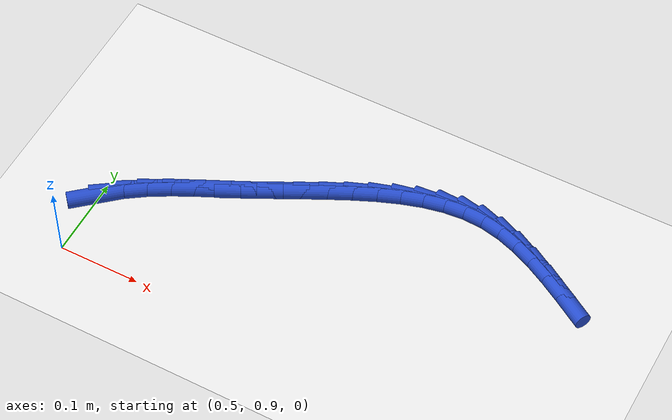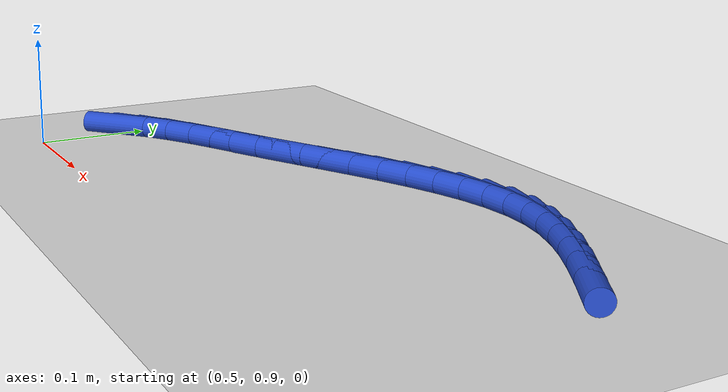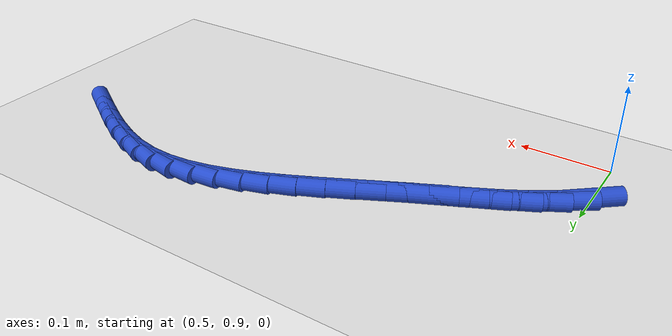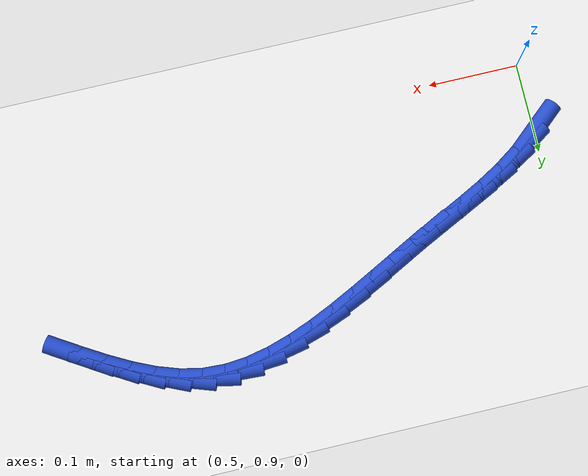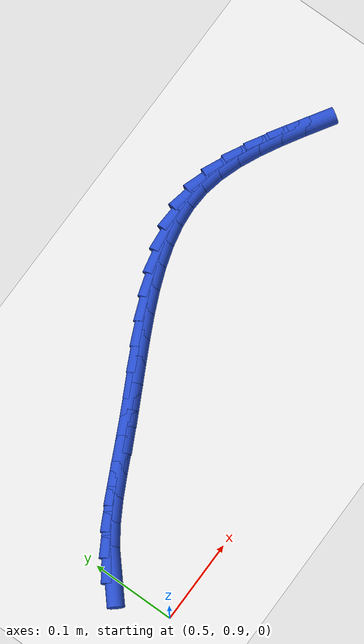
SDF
<sdf version="1.6">
 <world name="default">
  <model name="ground_plane">
   <static>1</static>
   <link name="link">
    <collision name="collision">
     <geometry><plane><normal>0 0 1</normal><size>100 100</size></plane></geometry>
     <surface><friction><ode><mu>100</mu><mu2>50</mu2></ode></friction></surface>
    </collision>
    <visual name="visual">
     <cast_shadows>0</cast_shadows>
     <geometry><plane><normal>0 0 1</normal><size>100 100</size></plane></geometry>
     <material>
      <script><uri>file://media/materials/scripts/gazebo.material</uri><name>Gazebo/WhiteGlow</name></script>
     </material>
    </visual>
   </link>
  </model>
  <model name="line">
   <link name="link_42">
    <pose>0.5038269260415796 0.9804532395200742 0.01 0 1.57 0.7159484637429826</pose>
    <collision name="collision">
     <geometry><cylinder><radius>0.01</radius><length>0.08</length></cylinder></geometry>
    </collision>
    <visual name="visual">
     <material>
      <script><name>Gazebo/Blue</name><uri>file://media/materials/scripts/gazebo.material</uri></script>
     </material>
     <geometry><cylinder><radius>0.01</radius><length>0.08</length></cylinder></geometry>
    </visual>
   </link>
   <link name="link_43">
    <pose>0.5237695707246781 0.997801846088262 0.01 0 1.57 0.6020070279841664</pose>
    <collision name="collision">
     <geometry><cylinder><radius>0.01</radius><length>0.08</length></cylinder></geometry>
    </collision>
    <visual name="visual">
     <material>
      <script><name>Gazebo/Blue</name><uri>file://media/materials/scripts/gazebo.material</uri></script>
     </material>
     <geometry><cylinder><radius>0.01</radius><length>0.08</length></cylinder></geometry>
    </visual>
   </link>
   <link name="link_44">
    <pose>0.546415427173407 1.01336152571024 0.01 0 1.57 0.5230825780058246</pose>
    <collision name="collision">
     <geometry><cylinder><radius>0.01</radius><length>0.08</length></cylinder></geometry>
    </collision>
    <visual name="visual">
     <material>
      <script><name>Gazebo/Blue</name><uri>file://media/materials/scripts/gazebo.material</uri></script>
     </material>
     <geometry><cylinder><radius>0.01</radius><length>0.08</length></cylinder></geometry>
    </visual>
   </link>
   <link name="link_45">
    <pose>0.5711641604966038 1.0276331849812053 0.01 0 1.57 0.4745253025807204</pose>
    <collision name="collision">
     <geometry><cylinder><radius>0.01</radius><length>0.08</length></cylinder></geometry>
    </collision>
    <visual name="visual">
     <material>
      <script><name>Gazebo/Blue</name><uri>file://media/materials/scripts/gazebo.material</uri></script>
     </material>
     <geometry><cylinder><radius>0.01</radius><length>0.08</length></cylinder></geometry>
    </visual>
   </link>
   <link name="link_46">
    <pose>0.5974154358031061 1.041117730496354 0.01 0 1.57 0.45243702331978924</pose>
    <collision name="collision">
     <geometry><cylinder><radius>0.01</radius><length>0.08</length></cylinder></geometry>
    </collision>
    <visual name="visual">
     <material>
      <script><name>Gazebo/Blue</name><uri>file://media/materials/scripts/gazebo.material</uri></script>
     </material>
     <geometry><cylinder><radius>0.01</radius><length>0.08</length></cylinder></geometry>
    </visual>
   </link>
   <link name="link_47">
    <pose>0.624568918201751 1.054316068850883 0.01 0 1.57 0.4544303903207774</pose>
    <collision name="collision">
     <geometry><cylinder><radius>0.01</radius><length>0.08</length></cylinder></geometry>
    </collision>
    <visual name="visual">
     <material>
      <script><name>Gazebo/Blue</name><uri>file://media/materials/scripts/gazebo.material</uri></script>
     </material>
     <geometry><cylinder><radius>0.01</radius><length>0.08</length></cylinder></geometry>
    </visual>
   </link>
   <link name="link_48">
    <pose>0.6520243897971952 1.067728918063453 0.01 0 1.57 0.4714313010147207</pose>
    <collision name="collision">
     <geometry><cylinder><radius>0.01</radius><length>0.08</length></cylinder></geometry>
    </collision>
    <visual name="visual">
     <material>
      <script><name>Gazebo/Blue</name><uri>file://media/materials/scripts/gazebo.material</uri></script>
     </material>
     <geometry><cylinder><radius>0.01</radius><length>0.08</length></cylinder></geometry>
    </visual>
   </link>
   <link name="link_49">
    <pose>0.6793155837851782 1.0816410907233474 0.01 0 1.57 0.47945931707030587</pose>
    <collision name="collision">
     <geometry><cylinder><radius>0.01</radius><length>0.08</length></cylinder></geometry>
    </collision>
    <visual name="visual">
     <material>
      <script><name>Gazebo/Blue</name><uri>file://media/materials/scripts/gazebo.material</uri></script>
     </material>
     <geometry><cylinder><radius>0.01</radius><length>0.08</length></cylinder></geometry>
    </visual>
   </link>
   <link name="link_50">
    <pose>0.7063678381431344 1.0957062018845758 0.01 0 1.57 0.474096318448564</pose>
    <collision name="collision">
     <geometry><cylinder><radius>0.01</radius><length>0.08</length></cylinder></geometry>
    </collision>
    <visual name="visual">
     <material>
      <script><name>Gazebo/Blue</name><uri>file://media/materials/scripts/gazebo.material</uri></script>
     </material>
     <geometry><cylinder><radius>0.01</radius><length>0.08</length></cylinder></geometry>
    </visual>
   </link>
   <link name="link_51">
    <pose>0.733177674037686 1.1094631319102832 0.01 0 1.57 0.45474403150399456</pose>
    <collision name="collision">
     <geometry><cylinder><radius>0.01</radius><length>0.08</length></cylinder></geometry>
    </collision>
    <visual name="visual">
     <material>
      <script><name>Gazebo/Blue</name><uri>file://media/materials/scripts/gazebo.material</uri></script>
     </material>
     <geometry><cylinder><radius>0.01</radius><length>0.08</length></cylinder></geometry>
    </visual>
   </link>
   <link name="link_52">
    <pose>0.7597416126354554 1.1224507611636152 0.01 0 1.57 0.4201852582547956</pose>
    <collision name="collision">
     <geometry><cylinder><radius>0.01</radius><length>0.08</length></cylinder></geometry>
    </collision>
    <visual name="visual">
     <material>
      <script><name>Gazebo/Blue</name><uri>file://media/materials/scripts/gazebo.material</uri></script>
     </material>
     <geometry><cylinder><radius>0.01</radius><length>0.08</length></cylinder></geometry>
    </visual>
   </link>
   <link name="link_53">
    <pose>0.7860561751030654 1.134207970007717 0.01 0 1.57 0.36857479426464224</pose>
    <collision name="collision">
     <geometry><cylinder><radius>0.01</radius><length>0.08</length></cylinder></geometry>
    </collision>
    <visual name="visual">
     <material>
      <script><name>Gazebo/Blue</name><uri>file://media/materials/scripts/gazebo.material</uri></script>
     </material>
     <geometry><cylinder><radius>0.01</radius><length>0.08</length></cylinder></geometry>
    </visual>
   </link>
   <link name="link_54">
    <pose>0.812117882607139 1.1442736388057342 0.01 0 1.57 0.2975390971836306</pose>
    <collision name="collision">
     <geometry><cylinder><radius>0.01</radius><length>0.08</length></cylinder></geometry>
    </collision>
    <visual name="visual">
     <material>
      <script><name>Gazebo/Blue</name><uri>file://media/materials/scripts/gazebo.material</uri></script>
     </material>
     <geometry><cylinder><radius>0.01</radius><length>0.08</length></cylinder></geometry>
    </visual>
   </link>
   <link name="link_55">
    <pose>0.8379232563142981 1.1521866479208116 0.01 0 1.57 0.2045412631188753</pose>
    <collision name="collision">
     <geometry><cylinder><radius>0.01</radius><length>0.08</length></cylinder></geometry>
    </collision>
    <visual name="visual">
     <material>
      <script><name>Gazebo/Blue</name><uri>file://media/materials/scripts/gazebo.material</uri></script>
     </material>
     <geometry><cylinder><radius>0.01</radius><length>0.08</length></cylinder></geometry>
    </visual>
   </link>
   <link name="link_56">
    <pose>0.8634688173911657 1.157485877716095 0.01 0 1.57 0.08775391873776302</pose>
    <collision name="collision">
     <geometry><cylinder><radius>0.01</radius><length>0.08</length></cylinder></geometry>
    </collision>
    <visual name="visual">
     <material>
      <script><name>Gazebo/Blue</name><uri>file://media/materials/scripts/gazebo.material</uri></script>
     </material>
     <geometry><cylinder><radius>0.01</radius><length>0.08</length></cylinder></geometry>
    </visual>
   </link>
   <link name="link_57">
    <pose>0.888751087004364 1.15971020855473 0.01 0 1.57 -0.052386787738391</pose>
    <collision name="collision">
     <geometry><cylinder><radius>0.01</radius><length>0.08</length></cylinder></geometry>
    </collision>
    <visual name="visual">
     <material>
      <script><name>Gazebo/Blue</name><uri>file://media/materials/scripts/gazebo.material</uri></script>
     </material>
     <geometry><cylinder><radius>0.01</radius><length>0.08</length></cylinder></geometry>
    </visual>
   </link>
   <link name="link_58">
    <pose>0.9137665868100378 1.158398526740824 0.01 0 1.57 -0.20344666515201165</pose>
    <collision name="collision">
     <geometry><cylinder><radius>0.01</radius><length>0.08</length></cylinder></geometry>
    </collision>
    <visual name="visual">
     <material>
      <script><name>Gazebo/Blue</name><uri>file://media/materials/scripts/gazebo.material</uri></script>
     </material>
     <geometry><cylinder><radius>0.01</radius><length>0.08</length></cylinder></geometry>
    </visual>
   </link>
   <link name="link_59">
    <pose>0.938528353803507 1.1532901531169648 0.01 0 1.57 -0.3306382047764136</pose>
    <collision name="collision">
     <geometry><cylinder><radius>0.01</radius><length>0.08</length></cylinder></geometry>
    </collision>
    <visual name="visual">
     <material>
      <script><name>Gazebo/Blue</name><uri>file://media/materials/scripts/gazebo.material</uri></script>
     </material>
     <geometry><cylinder><radius>0.01</radius><length>0.08</length></cylinder></geometry>
    </visual>
   </link>
   <link name="link_60">
    <pose>0.9631094577050308 1.144852981604869 0.01 0 1.57 -0.42669723053227326</pose>
    <collision name="collision">
     <geometry><cylinder><radius>0.01</radius><length>0.08</length></cylinder></geometry>
    </collision>
    <visual name="visual">
     <material>
      <script><name>Gazebo/Blue</name><uri>file://media/materials/scripts/gazebo.material</uri></script>
     </material>
     <geometry><cylinder><radius>0.01</radius><length>0.08</length></cylinder></geometry>
    </visual>
   </link>
   <link name="link_61">
    <pose>0.9875966045251326 1.1337203997632013 0.01 0 1.57 -0.494356832496948</pose>
    <collision name="collision">
     <geometry><cylinder><radius>0.01</radius><length>0.08</length></cylinder></geometry>
    </collision>
    <visual name="visual">
     <material>
      <script><name>Gazebo/Blue</name><uri>file://media/materials/scripts/gazebo.material</uri></script>
     </material>
     <geometry><cylinder><radius>0.01</radius><length>0.08</length></cylinder></geometry>
    </visual>
   </link>
   <link name="link_62">
    <pose>1.0120765002743368 1.1205257951506256 0.01 0 1.57 -0.5370483914675811</pose>
    <collision name="collision">
     <geometry><cylinder><radius>0.01</radius><length>0.08</length></cylinder></geometry>
    </collision>
    <visual name="visual">
     <material>
      <script><name>Gazebo/Blue</name><uri>file://media/materials/scripts/gazebo.material</uri></script>
     </material>
     <geometry><cylinder><radius>0.01</radius><length>0.08</length></cylinder></geometry>
    </visual>
   </link>
   <link name="link_63">
    <pose>1.0366358509631661 1.1059025553258064 0.01 0 1.57 -0.5575819934053063</pose>
    <collision name="collision">
     <geometry><cylinder><radius>0.01</radius><length>0.08</length></cylinder></geometry>
    </collision>
    <visual name="visual">
     <material>
      <script><name>Gazebo/Blue</name><uri>file://media/materials/scripts/gazebo.material</uri></script>
     </material>
     <geometry><cylinder><radius>0.01</radius><length>0.08</length></cylinder></geometry>
    </visual>
   </link>
  </model>
 </world>
</sdf>
